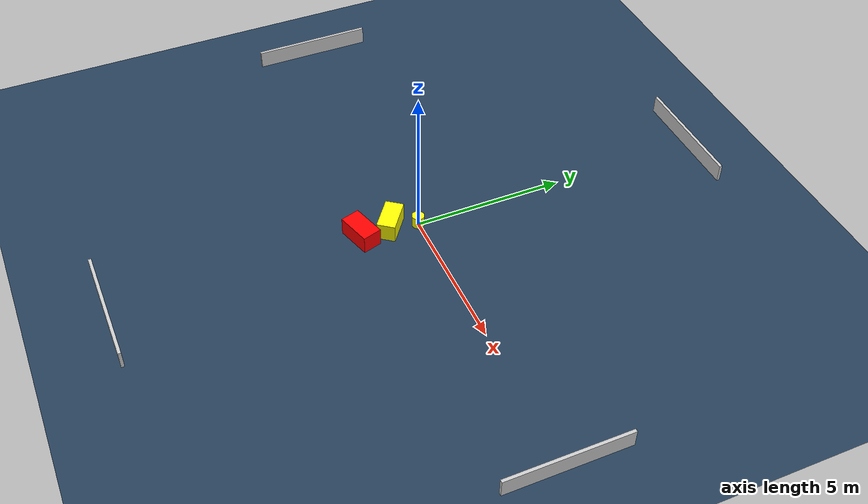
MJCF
<?xml version="1.0" ?>
<mujoco model="generated_environment">
  <option timestep="0.01" integrator="RK4" cone="elliptic"/>
  <default>
    <geom density="1"/>
  </default>
  <asset>
    <texture builtin="gradient" height="3072" name="skybox" rgb1="0.3 0.5 0.7" rgb2="0 0 0" type="skybox" width="512"/>
    <texture builtin="checker" height="300" name="groundplane" rgb1="0.2 0.3 0.4" rgb2="0.1 0.2 0.3" type="2d" width="300"/>
    <material name="groundplane" reflectance="0.2" texrepeat="5 5" texture="groundplane"/>
  </asset>
  <worldbody>
    <light dir="0 0 -1" directional="true" pos="0 0 1.5"/>
    <geom condim="3" friction="0.5 0.005 0.001" material="groundplane" name="floor" pos="0 0 0" size="0 0 0.05" type="plane"/>
    <body name="walls">
      <geom name="wall_1" condim="4" pos="-10.0 0.0 0.3" rgba="0.800000011920929 0.800000011920929 0.800000011920929 1.0" size="0.05 2.0 0.3" type="box"/>
      <geom name="wall_2" condim="4" pos="10.0 0.0 0.3" rgba="0.800000011920929 0.800000011920929 0.800000011920929 1.0" size="0.05 2.0 0.3" type="box"/>
      <geom name="wall_3" condim="4" pos="0.0 -10.0 0.3" rgba="0.800000011920929 0.800000011920929 0.800000011920929 1.0" size="2.0 0.05 0.3" type="box"/>
      <geom name="wall_4" condim="4" pos="0.0 10.0 0.3" rgba="0.800000011920929 0.800000011920929 0.800000011920929 1.0" size="2.0 0.05 0.3" type="box"/>
    </body>
    <body name="robot">
      <joint name="joint_x" type="slide" pos="0 0 0" axis="1 0 0"/>
      <joint name="joint_y" type="slide" pos="0 0 0" axis="0 1 0"/>
      <geom name="robot" type="cylinder" pos="0.0 0.0 0.2" size="0.2 0.2 0.0" mass="5.0" friction="1.0 0.005 0.0001" condim="4" rgba="1.0 1.0 0.0 1.0"/>
    </body>
    <body name="obstacle_1_movable">
      <geom name="obstacle_1_movable" condim="4" pos="-0.20682287266045526 -0.8679836038915733 0.3" euler="0 0 142.81243143669155" friction="0.0 0.005 0.001" rgba="1.0 1.0 0.0 1.0" size="0.5562095711928257 0.2987497001542521 0.3" type="box" mass="0.1"/>
      <joint type="free"/>
    </body>
    <body name="obstacle_2_static">
      <geom name="obstacle_2_static" condim="4" pos="-0.1422276506665755 -1.885519755321892 0.3" euler="0 0 16.768079242995704" friction="0.0 0.005 0.001" rgba="1.0 0.0 0.0 1.0" size="0.5750156390189705 0.32072346614619224 0.3" type="box"/>
    </body>
  </worldbody>
  <actuator>
    <motor name="actuator_x" joint="joint_x" gear="1" ctrlrange="-1 1"/>
    <motor name="actuator_y" joint="joint_y" gear="1" ctrlrange="-1 1"/>
  </actuator>
</mujoco>
